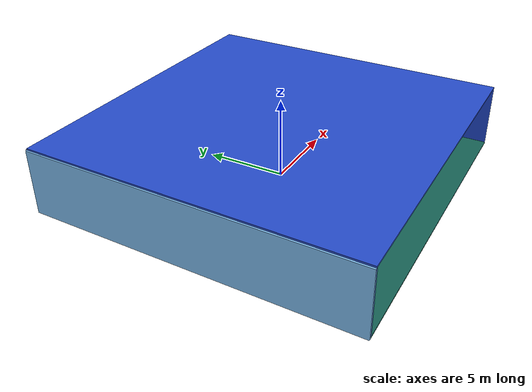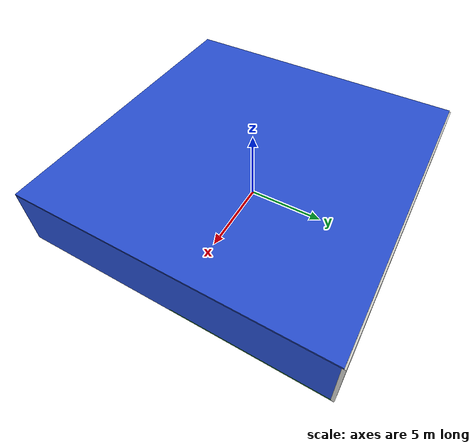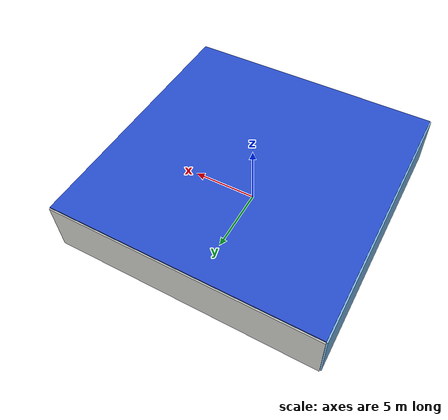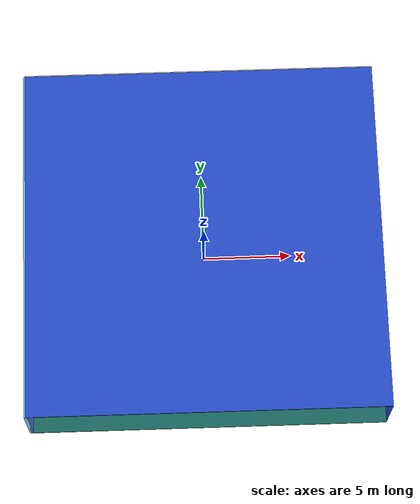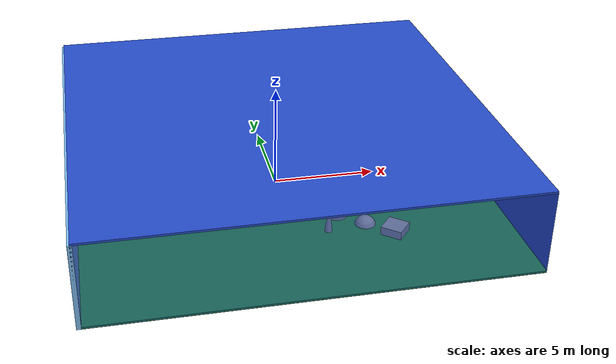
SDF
<sdf version="1.4">
 <world name="default">
  <physics type="ode">
   <max_step_size>0.001</max_step_size>
   <real_time_factor>1</real_time_factor>
   <real_time_update_rate>1000</real_time_update_rate>
   <gravity>0 0 -9.8</gravity>
  </physics>
  <scene><ambient>0.4 0.4 0.4 1</ambient><background>0.7 0.7 0.7 1</background><shadows>1</shadows></scene>
  <model name="Surrounding">
   <static>1</static>
   <link name="Ceiling">
    <collision name="Ceiling_Collision"><geometry><box><size>20 20 0.1</size></box></geometry></collision>
    <visual name="Ceiling_Visual">
     <geometry><box><size>20 20 0.1</size></box></geometry>
     <material>
      <script><uri>file://media/materials/scripts/gazebo.material</uri><name>Gazebo/Blue</name></script>
     </material>
    </visual>
    <pose>0 0 4.05 0 0 0</pose>
   </link>
   <link name="Wall_South">
    <collision name="Wall_South_Collision">
     <geometry><box><size>20 0 4</size></box></geometry>
     <pose>0 0 2 0 -0 0</pose>
    </collision>
    <visual name="Wall_South_Visual">
     <pose>0 0 2 0 -0 0</pose>
     <geometry><box><size>20 0 4</size></box></geometry>
     <material>
      <script><uri>file://media/materials/scripts/gazebo.material</uri><name>Gazebo/BlueTransparent</name></script>
     </material>
    </visual>
    <velocity_decay><linear>0</linear><angular>0</angular></velocity_decay>
    <pose>0 -10 0 0 -0 0</pose>
   </link>
   <link name="Wall_East">
    <collision name="Wall_21_Collision">
     <geometry><box><size>20 0 4</size></box></geometry>
     <pose>0 0 2 0 -0 0</pose>
    </collision>
    <visual name="Wall_21_Visual">
     <pose>0 0 2 0 -0 0</pose>
     <geometry><box><size>20 0 4</size></box></geometry>
     <material>
      <script><uri>file://media/materials/scripts/gazebo.material</uri><name>Gazebo/Blue</name></script>
     </material>
    </visual>
    <velocity_decay><linear>0</linear><angular>0</angular></velocity_decay>
    <pose>10 0 0 0 -0 1.5708</pose>
   </link>
   <link name="Wall_North">
    <collision name="Wall_22_Collision">
     <geometry><box><size>20 0.2 4</size></box></geometry>
     <pose>0 0 2 0 -0 0</pose>
    </collision>
    <visual name="Wall_22_Visual">
     <pose>0 0 2 0 -0 0</pose>
     <geometry><box><size>20 0.2 4</size></box></geometry>
     <material>
      <script><uri>file://media/materials/scripts/gazebo.material</uri><name>Gazebo/CeilingTiled</name></script>
     </material>
    </visual>
    <velocity_decay><linear>0</linear><angular>0</angular></velocity_decay>
    <pose>0 10 0 0 -0 0</pose>
   </link>
   <link name="Wall_West">
    <collision name="Wall_23_Collision">
     <geometry><box><size>20 0.2 4</size></box></geometry>
     <pose>0 0 2 0 -0 0</pose>
    </collision>
    <visual name="Wall_23_Visual">
     <pose>0 0 2 0 -0 0</pose>
     <geometry><box><size>20 0.2 4</size></box></geometry>
     <material>
      <script><uri>file://media/materials/scripts/gazebo.material</uri><name>Gazebo/SkyBlue</name></script>
     </material>
    </visual>
    <velocity_decay><linear>0</linear><angular>0</angular></velocity_decay>
    <pose>-10 0 0 0 0 -1.5708</pose>
   </link>
   <link name="Ground_link">
    <collision name="collision">
     <pose>0 0 .05 0 -0 0</pose>
     <geometry><box><size>20 20 0.1</size></box></geometry>
    </collision>
    <visual name="visual">
     <pose>0 0 .05 0 -0 0</pose>
     <geometry><box><size>20 20 0.1</size></box></geometry>
     <material>
      <script><uri>file://media/materials/scripts/gazebo.material</uri><name>Gazebo/GreenGlow</name></script>
     </material>
    </visual>
   </link>
   <static>1</static>
  </model>
  <spherical_coordinates>
   <surface_model>EARTH_WGS84</surface_model>
   <latitude_deg>0</latitude_deg>
   <longitude_deg>0</longitude_deg>
   <elevation>0</elevation>
   <heading_deg>0</heading_deg>
  </spherical_coordinates>
  <light name="lightball_0" type="diffuse">
   <diffuse>0.8 0.8 0.8 1</diffuse>
   <specular>0.2 0.2 0.2 1</specular>
   <attenuation>
    <range>100</range>
    <constant>0.7</constant>
    <linear>0.01</linear>
    <quadratic>0.001</quadratic>
   </attenuation>
   <direction>-0.5 0.1 -0.9</direction>
   <pose>-9.86319065873 4.22448417428 1.38116000163 0 0 0</pose>
  </light>
  <light name="lightball_1" type="diffuse">
   <diffuse>0.8 0.8 0.8 1</diffuse>
   <specular>0.2 0.2 0.2 1</specular>
   <attenuation>
    <range>100</range>
    <constant>0.7</constant>
    <linear>0.01</linear>
    <quadratic>0.001</quadratic>
   </attenuation>
   <direction>-0.5 0.1 -0.9</direction>
   <pose>-1.89491284333 4.94232070596 1.76087213993 0 0 0</pose>
  </light>
  <light name="lightball_2" type="diffuse">
   <diffuse>0.8 0.8 0.8 1</diffuse>
   <specular>0.2 0.2 0.2 1</specular>
   <attenuation>
    <range>100</range>
    <constant>0.7</constant>
    <linear>0.01</linear>
    <quadratic>0.001</quadratic>
   </attenuation>
   <direction>-0.5 0.1 -0.9</direction>
   <pose>0.983365749163 -4.10602663721 3.31876902768 0 0 0</pose>
  </light>
  <light name="lightball_3" type="diffuse">
   <diffuse>0.8 0.8 0.8 1</diffuse>
   <specular>0.2 0.2 0.2 1</specular>
   <attenuation>
    <range>100</range>
    <constant>0.7</constant>
    <linear>0.01</linear>
    <quadratic>0.001</quadratic>
   </attenuation>
   <direction>-0.5 0.1 -0.9</direction>
   <pose>6.56124657422 -1.75608785283 2.4500198965 0 0 0</pose>
  </light>
  <include><uri>model://table</uri><pose>-8.41621184112 4.88196872392 0 0 0 2.55296565725</pose></include>
  <include>
   <uri>model://textured_shapes</uri>
   <pose>-5.01624508092 -1.9907396761 0 0 0 0.278736704961</pose>
  </include>
  <include>
   <uri>model://construction_cone</uri>
   <pose>1.47358324505 -5.08201757172 0 0 0 0.198935035254</pose>
  </include>
  <include><uri>model://table</uri><pose>2.08180284155 1.14528198422 0 0 0 3.09755409536</pose></include>
  <include>
   <uri>model://textured_shapes</uri>
   <pose>3.30237529962 -4.82143372334 0 0 0 0.871164472809</pose>
  </include>
  <include><uri>model://cabinet</uri><pose>5.52427431162 -1.14865306008 0 0 0 1.43296567556</pose></include>
  <include><uri>model://cabinet</uri><pose>4.61114323408 7.35230884782 0 0 0 1.65263344704</pose></include>
  <include><uri>model://cabinet</uri><pose>7.25940758883 0.759086938857 0 0 0 2.87361321911</pose></include>
 </world>
</sdf>

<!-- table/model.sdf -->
<sdf version="1.5">
  <model name="table">
    <static>true</static>
    <link name="link">
      <collision name="surface">
        <pose>0 0 1.0 0 0 0</pose>
        <geometry>
          <box>
            <size>1.5 0.8 0.03</size>
          </box>
        </geometry>
        <surface>
          <friction>
            <ode>
              <mu>0.6</mu>
              <mu2>0.6</mu2>
            </ode>
          </friction>
        </surface>
      </collision>
      <visual name="visual1">
        <pose>0 0 1.0 0 0 0</pose>
        <geometry>
          <box>
            <size>1.5 0.8 0.03</size>
          </box>
        </geometry>
        <material>
          <script>
            <uri>model://media/materials/scripts/gazebo.material</uri>
            <name>Gazebo/Wood</name>
          </script>
        </material>
      </visual>
      <collision name="front_left_leg">
        <pose>0.68 0.38 0.5 0 0 0</pose>
        <geometry>
          <cylinder>
            <radius>0.02</radius>
            <length>1.0</length>
          </cylinder>
        </geometry>
      </collision>
      <visual name="front_left_leg">
        <pose>0.68 0.38 0.5 0 0 0</pose>
        <geometry>
          <cylinder>
            <radius>0.02</radius>
            <length>1.0</length>
          </cylinder>
        </geometry>
        <material>
          <script>
            <uri>model://media/materials/scripts/gazebo.material</uri>
            <name>Gazebo/Grey</name>
          </script>
        </material>
      </visual>
      <collision name="front_right_leg">
        <pose>0.68 -0.38 0.5 0 0 0</pose>
        <geometry>
          <cylinder>
            <radius>0.02</radius>
            <length>1.0</length>
          </cylinder>
        </geometry>
      </collision>
      <visual name="front_right_leg">
        <pose>0.68 -0.38 0.5 0 0 0</pose>
        <geometry>
          <cylinder>
            <radius>0.02</radius>
            <length>1.0</length>
          </cylinder>
        </geometry>
        <material>
          <script>
            <uri>model://media/materials/scripts/gazebo.material</uri>
            <name>Gazebo/Grey</name>
          </script>
        </material>
      </visual>
      <collision name="back_right_leg">
        <pose>-0.68 -0.38 0.5 0 0 0</pose>
        <geometry>
          <cylinder>
            <radius>0.02</radius>
            <length>1.0</length>
          </cylinder>
        </geometry>
      </collision>
      <visual name="back_right_leg">
        <pose>-0.68 -0.38 0.5 0 0 0</pose>
        <geometry>
          <cylinder>
            <radius>0.02</radius>
            <length>1.0</length>
          </cylinder>
        </geometry>
        <material>
          <script>
            <uri>model://media/materials/scripts/gazebo.material</uri>
            <name>Gazebo/Grey</name>
          </script>
        </material>
      </visual>
      <collision name="back_left_leg">
        <pose>-0.68 0.38 0.5 0 0 0</pose>
        <geometry>
          <cylinder>
            <radius>0.02</radius>
            <length>1.0</length>
          </cylinder>
        </geometry>
      </collision>
      <visual name="back_left_leg">
        <pose>-0.68 0.38 0.5 0 0 0</pose>
        <geometry>
          <cylinder>
            <radius>0.02</radius>
            <length>1.0</length>
          </cylinder>
        </geometry>
        <material>
          <script>
            <uri>model://media/materials/scripts/gazebo.material</uri>
            <name>Gazebo/Grey</name>
          </script>
        </material>
      </visual>
    </link>
  </model>
</sdf>

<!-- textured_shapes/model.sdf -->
<sdf version="1.6">
  <model name="textured_shapes">
    <pose>0 0 0.5 0 0 0</pose>
    <link name="box">
      <pose>0 -1.5 0 0 0 0</pose>
      <collision name="collision">
        <geometry>
          <box>
            <size>1 1 1</size>
          </box>
        </geometry>
      </collision>
      <visual name="visual">
        <geometry>
          <box>
            <size>1 1 1</size>
          </box>
        </geometry>
        <material>
          <script>
            <uri>model://../model_source/models/textured_shapes/materials/scripts</uri>
            <uri>model://../model_source/models/textured_shapes/materials/textures</uri>
            <name>TexturedShape/Squares</name>
          </script>
        </material>
      </visual>
    </link>
    <link name="sphere">
      <collision name="collision">
        <geometry>
          <sphere>
            <radius>0.5</radius>
          </sphere>
        </geometry>
      </collision>
      <visual name="visual">
        <geometry>
          <sphere>
            <radius>0.5</radius>
          </sphere>
        </geometry>
        <material>
          <script>
            <uri>model://../model_source/models/textured_shapes/materials/scripts</uri>
            <uri>model://../model_source/models/textured_shapes/materials/textures</uri>
            <name>TexturedShape/Squares</name>
          </script>
        </material>
      </visual>
    </link>
    <link name="cylinder">
      <pose>0 1.5 0 0 0 0</pose>
      <collision name="collision">
        <geometry>
          <cylinder>
            <radius>0.5</radius>
            <length>1</length>
          </cylinder>
        </geometry>
      </collision>
      <visual name="visual">
        <geometry>
          <cylinder>
            <radius>0.5</radius>
            <length>1</length>
          </cylinder>
        </geometry>
        <material>
          <script>
            <uri>model://../model_source/models/textured_shapes/materials/scripts</uri>
            <uri>model://../model_source/models/textured_shapes/materials/textures</uri>
            <name>TexturedShape/Squares</name>
          </script>
        </material>
      </visual>
    </link>
  </model>
</sdf>

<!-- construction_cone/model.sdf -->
<sdf version="1.5">
  <model name="Construction Cone">
    <link name="link">
      <collision name="collision">
        <geometry>
          <mesh>
            <scale>10 10 10</scale>
            <uri>file://isr-testbed/construction_cone/meshes/construction_cone.dae</uri>
          </mesh>
        </geometry>
      </collision>
      <visual name="visual">
        <geometry>
          <mesh>
            <scale>10 10 10</scale>
            <uri>file://isr-testbed/construction_cone/meshes/construction_cone.dae</uri>
          </mesh>
        </geometry>
      </visual>
    </link>
  </model>
</sdf>

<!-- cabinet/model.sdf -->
<sdf version="1.5">
  <model name="cabinet">
    <static>true</static>
    <link name="cabinet_bottom_plate">
      <inertial>
        <pose>0 0 -1 0 0 0</pose>
        <inertia>
          <ixx>2.050000</ixx>
          <ixy>0</ixy>
          <ixz>0</ixz>
          <iyy>2.050000</iyy>
          <iyz>0</iyz>
          <izz>2.050000</izz>
        </inertia>
        <mass>25.000000</mass>
      </inertial>
      <collision name="cabinet_bottom_plate_geom">
        <pose>0 0 0.010000 0 0 0</pose>
        <geometry>
          <box>
            <size>0.450000 0.450000 0.020000</size>
          </box>
        </geometry>
      </collision>
      <visual name="cabinet_bottom_plate_geom_visual">
        <pose>0 0 0.010000 0 0 0</pose>
        <geometry>
          <box>
            <size>0.450000 0.450000 0.020000</size>
          </box>
        </geometry>
        <material>
          <script>
            <uri>model://media/materials/scripts/gazebo.material</uri>
            <name>Gazebo/Wood</name>
          </script>
        </material>
      </visual>
      <collision name="cabinet_bottom_plate_geom_cabinet_back_plate">
        <pose>0.235000 0 0.510000 0 0 0</pose>
        <geometry>
          <box>
            <size>0.020000 0.450000 1.020000</size>
          </box>
        </geometry>
      </collision>
      <visual name="cabinet_bottom_plate_geom_cabinet_back_plate_visual">
        <pose>0.235000 0 0.510000 0 0 0</pose>
        <geometry>
          <box>
            <size>0.020000 0.450000 1.020000</size>
          </box>
        </geometry>
        <material>
          <script>
            <uri>model://media/materials/scripts/gazebo.material</uri>
            <name>Gazebo/Wood</name>
          </script>
        </material>
      </visual>
      <collision name="cabinet_bottom_plate_geom_cabinet_left_plate">
        <pose>0 0.235000 0.510000 0 0 0</pose>
        <geometry>
          <box>
            <size>0.450000 0.020000 1.020000</size>
          </box>
        </geometry>
      </collision>
      <visual name="cabinet_bottom_plate_geom_cabinet_left_plate_visual">
        <pose>0 0.235000 0.510000 0 0 0</pose>
        <geometry>
          <box>
            <size>0.450000 0.020000 1.020000</size>
          </box>
        </geometry>
        <material>
          <script>
            <uri>model://media/materials/scripts/gazebo.material</uri>
            <name>Gazebo/Wood</name>
          </script>
        </material>
      </visual>
      <collision name="cabinet_bottom_plate_geom_cabinet_middle_plate">
        <pose>0 0 0.510000 0 0 0</pose>
        <geometry>
          <box>
            <size>0.450000 0.450000 0.020000</size>
          </box>
        </geometry>
      </collision>
      <visual name="cabinet_bottom_plate_geom_cabinet_middle_plate_visual">
        <pose>0 0 0.510000 0 0 0</pose>
        <geometry>
          <box>
            <size>0.450000 0.450000 0.020000</size>
          </box>
        </geometry>
        <material>
          <script>
            <uri>model://media/materials/scripts/gazebo.material</uri>
            <name>Gazebo/Wood</name>
          </script>
        </material>
      </visual>
      <collision name="cabinet_bottom_plate_geom_cabinet_right_plate">
        <pose>0 -0.235000 0.510000 0 0 0</pose>
        <geometry>
          <box>
            <size>0.450000 0.020000 1.020000</size>
          </box>
        </geometry>
      </collision>
      <visual name="cabinet_bottom_plate_geom_cabinet_right_plate_visual">
        <pose>0 -0.235000 0.510000 0 0 0</pose>
        <geometry>
          <box>
            <size>0.450000 0.020000 1.020000</size>
          </box>
        </geometry>
        <material>
          <script>
            <uri>model://media/materials/scripts/gazebo.material</uri>
            <name>Gazebo/Wood</name>
          </script>
        </material>
      </visual>
      <collision name="cabinet_bottom_plate_geom_cabinet_top_plate">
        <pose>0 0 1.010000 0 0 0</pose>
        <geometry>
          <box>
            <size>0.450000 0.450000 0.020000</size>
          </box>
        </geometry>
      </collision>
      <visual name="cabinet_bottom_plate_geom_cabinet_top_plate_visual">
        <pose>0 0 1.010000 0 0 0</pose>
        <geometry>
          <box>
            <size>0.450000 0.450000 0.020000</size>
          </box>
        </geometry>
        <material>
          <script>
            <uri>model://media/materials/scripts/gazebo.material</uri>
            <name>Gazebo/Wood</name>
          </script>
        </material>
      </visual>
    </link>
  </model>
</sdf>
